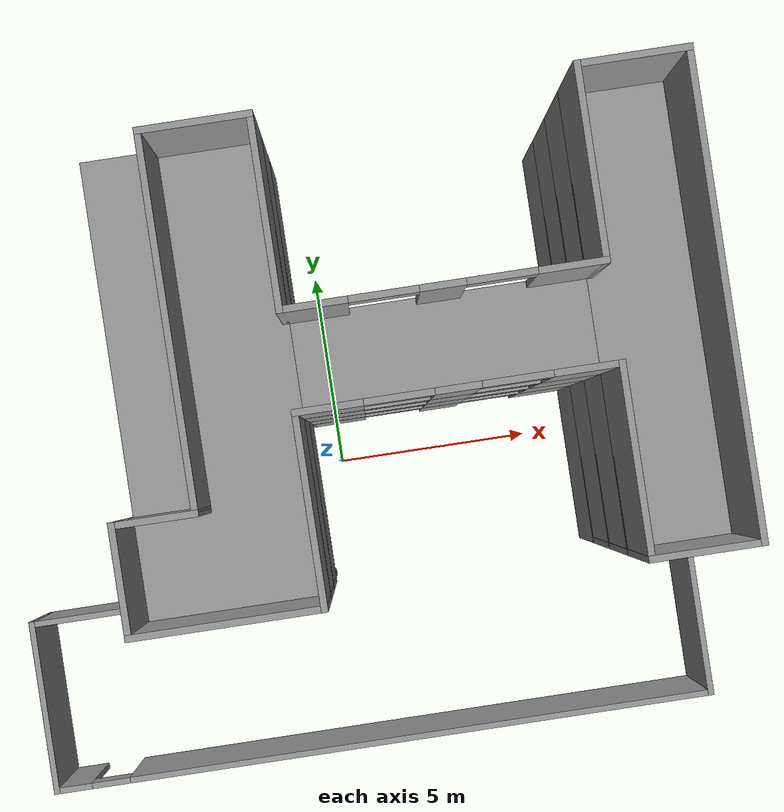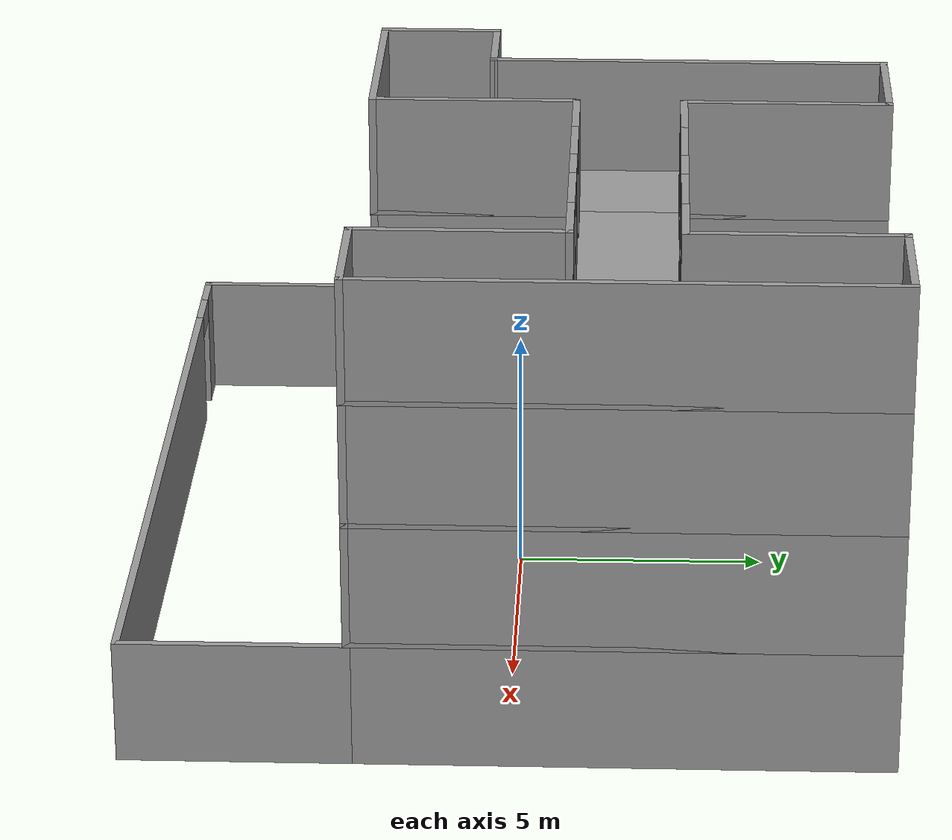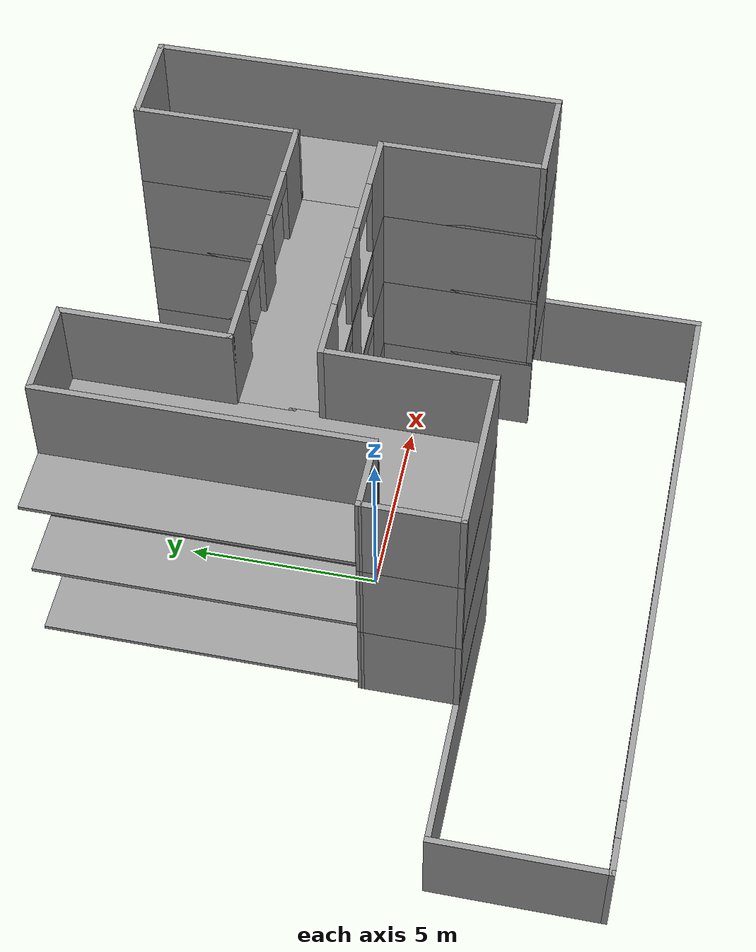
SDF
<sdf version="1.7">
 <model name="lobby_w_residential_levels_x3">
  <link name="Floor_0">
   <collision name="Floor_0_Collision_0">
    <geometry><box><size>2.5 10.5 0.1</size></box></geometry>
    <pose>7.375 2.175 0.05 0 -0 0</pose>
   </collision>
   <visual name="Floor_0_Visual_0">
    <pose>7.375 2.175 0.05 0 -0 0</pose>
    <geometry><box><size>2.5 10.5 0.1</size></box></geometry>
    <material>
     <script><uri>file://media/materials/scripts/gazebo.material</uri><name>Gazebo/Grey</name></script>
     <ambient>1 1 1 1</ambient>
    </material>
    <meta><layer>1</layer></meta>
   </visual>
   <collision name="Floor_0_Collision_1">
    <geometry><box><size>4.1 10.5 0.1</size></box></geometry>
    <pose>-2.625 2.175 0.05 0 -0 0</pose>
   </collision>
   <visual name="Floor_0_Visual_1">
    <pose>-2.625 2.175 0.05 0 -0 0</pose>
    <geometry><box><size>4.1 10.5 0.1</size></box></geometry>
    <material>
     <script><uri>file://media/materials/scripts/gazebo.material</uri><name>Gazebo/Grey</name></script>
     <ambient>1 1 1 1</ambient>
    </material>
    <meta><layer>1</layer></meta>
   </visual>
   <collision name="Floor_0_Collision_2">
    <geometry><box><size>6.85 2.3 0.1</size></box></geometry>
    <pose>2.775 2.175 0.05 0 -0 0</pose>
   </collision>
   <visual name="Floor_0_Visual_2">
    <pose>2.775 2.175 0.05 0 -0 0</pose>
    <geometry><box><size>6.85 2.3 0.1</size></box></geometry>
    <material>
     <script><uri>file://media/materials/scripts/gazebo.material</uri><name>Gazebo/Grey</name></script>
     <ambient>1 1 1 1</ambient>
    </material>
    <meta><layer>1</layer></meta>
   </visual>
   <pose>0 0 2.5 0 -0 0</pose>
  </link>
  <link name="Floor_1">
   <collision name="Floor_1_Collision_0">
    <geometry><box><size>2.5 10.5 0.1</size></box></geometry>
    <pose>7.375 2.175 0.05 0 -0 0</pose>
   </collision>
   <visual name="Floor_1_Visual_0">
    <pose>7.375 2.175 0.05 0 -0 0</pose>
    <geometry><box><size>2.5 10.5 0.1</size></box></geometry>
    <material>
     <script><uri>file://media/materials/scripts/gazebo.material</uri><name>Gazebo/Grey</name></script>
     <ambient>1 1 1 1</ambient>
    </material>
    <meta><layer>1</layer></meta>
   </visual>
   <collision name="Floor_1_Collision_1">
    <geometry><box><size>4.1 10.5 0.1</size></box></geometry>
    <pose>-2.625 2.175 0.05 0 -0 0</pose>
   </collision>
   <visual name="Floor_1_Visual_1">
    <pose>-2.625 2.175 0.05 0 -0 0</pose>
    <geometry><box><size>4.1 10.5 0.1</size></box></geometry>
    <material>
     <script><uri>file://media/materials/scripts/gazebo.material</uri><name>Gazebo/Grey</name></script>
     <ambient>1 1 1 1</ambient>
    </material>
    <meta><layer>1</layer></meta>
   </visual>
   <collision name="Floor_1_Collision_2">
    <geometry><box><size>6.85 2.3 0.1</size></box></geometry>
    <pose>2.775 2.175 0.05 0 -0 0</pose>
   </collision>
   <visual name="Floor_1_Visual_2">
    <pose>2.775 2.175 0.05 0 -0 0</pose>
    <geometry><box><size>6.85 2.3 0.1</size></box></geometry>
    <material>
     <script><uri>file://media/materials/scripts/gazebo.material</uri><name>Gazebo/Grey</name></script>
     <ambient>1 1 1 1</ambient>
    </material>
    <meta><layer>1</layer></meta>
   </visual>
   <pose>0 0 7.5 0 -0 0</pose>
  </link>
  <link name="Floor_2">
   <collision name="Floor_2_Collision_0">
    <geometry><box><size>2.5 10.5 0.1</size></box></geometry>
    <pose>7.375 2.175 0.05 0 -0 0</pose>
   </collision>
   <visual name="Floor_2_Visual_0">
    <pose>7.375 2.175 0.05 0 -0 0</pose>
    <geometry><box><size>2.5 10.5 0.1</size></box></geometry>
    <material>
     <script><uri>file://media/materials/scripts/gazebo.material</uri><name>Gazebo/Grey</name></script>
     <ambient>1 1 1 1</ambient>
    </material>
    <meta><layer>1</layer></meta>
   </visual>
   <collision name="Floor_2_Collision_1">
    <geometry><box><size>4.1 10.5 0.1</size></box></geometry>
    <pose>-2.625 2.175 0.05 0 -0 0</pose>
   </collision>
   <visual name="Floor_2_Visual_1">
    <pose>-2.625 2.175 0.05 0 -0 0</pose>
    <geometry><box><size>4.1 10.5 0.1</size></box></geometry>
    <material>
     <script><uri>file://media/materials/scripts/gazebo.material</uri><name>Gazebo/Grey</name></script>
     <ambient>1 1 1 1</ambient>
    </material>
    <meta><layer>1</layer></meta>
   </visual>
   <collision name="Floor_2_Collision_2">
    <geometry><box><size>6.85 2.3 0.1</size></box></geometry>
    <pose>2.775 2.175 0.05 0 -0 0</pose>
   </collision>
   <visual name="Floor_2_Visual_2">
    <pose>2.775 2.175 0.05 0 -0 0</pose>
    <geometry><box><size>6.85 2.3 0.1</size></box></geometry>
    <material>
     <script><uri>file://media/materials/scripts/gazebo.material</uri><name>Gazebo/Grey</name></script>
     <ambient>1 1 1 1</ambient>
    </material>
    <meta><layer>1</layer></meta>
   </visual>
   <pose>0 0 5.0 0 -0 0</pose>
  </link>
  <link name="Wall_100">
   <collision name="Wall_100_Collision">
    <geometry><box><size>4.5 0.15 2.5</size></box></geometry>
    <pose>0 0 1.25 0 -0 0</pose>
   </collision>
   <visual name="Wall_100_Visual">
    <pose>0 0 1.25 0 -0 0</pose>
    <geometry><box><size>4.5 0.15 2.5</size></box></geometry>
    <material>
     <script><uri>file://media/materials/scripts/gazebo.material</uri><name>Gazebo/Grey</name></script>
     <ambient>1 1 1 1</ambient>
    </material>
    <meta><layer>0</layer></meta>
   </visual>
   <pose>-8.55 -5.175 0 0 -0 1.5708</pose>
  </link>
  <link name="Wall_101">
   <collision name="Wall_101_Collision">
    <geometry><box><size>8 0.15 2.5</size></box></geometry>
    <pose>0 0 1.25 0 -0 0</pose>
   </collision>
   <visual name="Wall_101_Visual">
    <pose>0 0 1.25 0 -0 0</pose>
    <geometry><box><size>8 0.15 2.5</size></box></geometry>
    <material>
     <script><uri>file://media/materials/scripts/gazebo.material</uri><name>Gazebo/Grey</name></script>
     <ambient>1 1 1 1</ambient>
    </material>
    <meta><layer>0</layer></meta>
   </visual>
   <pose>-4.625 -3 0 0 -0 0</pose>
  </link>
  <link name="Wall_38">
   <pose>2.775 3.25 0 0 -0 0</pose>
   <visual name="Wall_38_Visual_0">
    <pose>-2.74441 0 1.25 0 -0 0</pose>
    <geometry><box><size>1.51117 0.15 2.5</size></box></geometry>
    <material>
     <script><uri>file://media/materials/scripts/gazebo.material</uri><name>Gazebo/Grey</name></script>
     <ambient>1 1 1 1</ambient>
    </material>
    <meta><layer>0</layer></meta>
   </visual>
   <collision name="Wall_38_Collision_0">
    <geometry><box><size>1.51117 0.15 2.5</size></box></geometry>
    <pose>-2.74441 0 1.25 0 -0 0</pose>
   </collision>
   <visual name="Wall_38_Visual_1">
    <pose>0.004325 0 1.25 0 -0 0</pose>
    <geometry><box><size>0.9863 0.15 2.5</size></box></geometry>
    <material>
     <script><uri>file://media/materials/scripts/gazebo.material</uri><name>Gazebo/Grey</name></script>
     <ambient>1 1 1 1</ambient>
    </material>
    <meta><layer>0</layer></meta>
   </visual>
   <collision name="Wall_38_Collision_1">
    <geometry><box><size>0.9863 0.15 2.5</size></box></geometry>
    <pose>0.004325 0 1.25 0 -0 0</pose>
   </collision>
   <visual name="Wall_38_Visual_2">
    <pose>2.74874 0 1.25 0 -0 0</pose>
    <geometry><box><size>1.50253 0.15 2.5</size></box></geometry>
    <material>
     <script><uri>file://media/materials/scripts/gazebo.material</uri><name>Gazebo/Grey</name></script>
     <ambient>1 1 1 1</ambient>
    </material>
    <meta><layer>0</layer></meta>
   </visual>
   <collision name="Wall_38_Collision_2">
    <geometry><box><size>1.50253 0.15 2.5</size></box></geometry>
    <pose>2.74874 0 1.25 0 -0 0</pose>
   </collision>
   <visual name="Wall_38_Visual_3">
    <pose>-1.23883 0 2.25 0 -0 0</pose>
    <geometry><box><size>1.5 0.15 0.5</size></box></geometry>
    <material>
     <script><uri>file://media/materials/scripts/gazebo.material</uri><name>Gazebo/Grey</name></script>
     <ambient>1 1 1 1</ambient>
    </material>
    <meta><layer>0</layer></meta>
   </visual>
   <collision name="Wall_38_Collision_3">
    <geometry><box><size>1.5 0.15 0.5</size></box></geometry>
    <pose>-1.23883 0 2.25 0 -0 0</pose>
   </collision>
   <visual name="Wall_38_Visual_4">
    <pose>1.24747 0 2.25 0 -0 0</pose>
    <geometry><box><size>1.5 0.15 0.5</size></box></geometry>
    <material>
     <script><uri>file://media/materials/scripts/gazebo.material</uri><name>Gazebo/Grey</name></script>
     <ambient>1 1 1 1</ambient>
    </material>
    <meta><layer>0</layer></meta>
   </visual>
   <collision name="Wall_38_Collision_4">
    <geometry><box><size>1.5 0.15 0.5</size></box></geometry>
    <pose>1.24747 0 2.25 0 -0 0</pose>
   </collision>
  </link>
  <link name="Wall_39">
   <collision name="Wall_39_Collision">
    <geometry><box><size>4.25 0.15 2.5</size></box></geometry>
    <pose>0 0 1.25 0 -0 0</pose>
   </collision>
   <visual name="Wall_39_Visual">
    <pose>0 0 1.25 0 -0 0</pose>
    <geometry><box><size>4.25 0.15 2.5</size></box></geometry>
    <material>
     <script><uri>file://media/materials/scripts/gazebo.material</uri><name>Gazebo/Grey</name></script>
     <ambient>1 1 1 1</ambient>
    </material>
    <meta><layer>0</layer></meta>
   </visual>
   <pose>6.2 5.3 0 0 -0 1.5708</pose>
  </link>
  <link name="Wall_40">
   <collision name="Wall_40_Collision">
    <geometry><box><size>2.5 0.15 2.5</size></box></geometry>
    <pose>0 0 1.25 0 -0 0</pose>
   </collision>
   <visual name="Wall_40_Visual">
    <pose>0 0 1.25 0 -0 0</pose>
    <geometry><box><size>2.5 0.15 2.5</size></box></geometry>
    <material>
     <script><uri>file://media/materials/scripts/gazebo.material</uri><name>Gazebo/Grey</name></script>
     <ambient>1 1 1 1</ambient>
    </material>
    <meta><layer>0</layer></meta>
   </visual>
   <pose>7.375 7.35 0 0 -0 0</pose>
  </link>
  <link name="Wall_41">
   <collision name="Wall_41_Collision">
    <geometry><box><size>10.5 0.15 2.5</size></box></geometry>
    <pose>0 0 1.25 0 -0 0</pose>
   </collision>
   <visual name="Wall_41_Visual">
    <pose>0 0 1.25 0 -0 0</pose>
    <geometry><box><size>10.5 0.15 2.5</size></box></geometry>
    <material>
     <script><uri>file://media/materials/scripts/gazebo.material</uri><name>Gazebo/Grey</name></script>
     <ambient>1 1 1 1</ambient>
    </material>
    <meta><layer>0</layer></meta>
   </visual>
   <pose>8.55 2.175 0 0 -0 -1.5708</pose>
  </link>
  <link name="Wall_43">
   <collision name="Wall_43_Collision">
    <geometry><box><size>4.25 0.15 2.5</size></box></geometry>
    <pose>0 0 1.25 0 -0 0</pose>
   </collision>
   <visual name="Wall_43_Visual">
    <pose>0 0 1.25 0 -0 0</pose>
    <geometry><box><size>4.25 0.15 2.5</size></box></geometry>
    <material>
     <script><uri>file://media/materials/scripts/gazebo.material</uri><name>Gazebo/Grey</name></script>
     <ambient>1 1 1 1</ambient>
    </material>
    <meta><layer>0</layer></meta>
   </visual>
   <pose>6.2 -0.95 0 0 -0 1.5708</pose>
  </link>
  <link name="Wall_44">
   <pose>2.775 1.1 0 0 -0 3.14159</pose>
   <visual name="Wall_44_Visual_0">
    <pose>-2.74874 0 1.25 0 -0 0</pose>
    <geometry><box><size>1.50253 0.15 2.5</size></box></geometry>
    <material>
     <script><uri>file://media/materials/scripts/gazebo.material</uri><name>Gazebo/Grey</name></script>
     <ambient>1 1 1 1</ambient>
    </material>
    <meta><layer>0</layer></meta>
   </visual>
   <collision name="Wall_44_Collision_0">
    <geometry><box><size>1.50253 0.15 2.5</size></box></geometry>
    <pose>-2.74874 0 1.25 0 -0 0</pose>
   </collision>
   <visual name="Wall_44_Visual_1">
    <pose>-0.004325 0 1.25 0 -0 0</pose>
    <geometry><box><size>0.9863 0.15 2.5</size></box></geometry>
    <material>
     <script><uri>file://media/materials/scripts/gazebo.material</uri><name>Gazebo/Grey</name></script>
     <ambient>1 1 1 1</ambient>
    </material>
    <meta><layer>0</layer></meta>
   </visual>
   <collision name="Wall_44_Collision_1">
    <geometry><box><size>0.9863 0.15 2.5</size></box></geometry>
    <pose>-0.004325 0 1.25 0 -0 0</pose>
   </collision>
   <visual name="Wall_44_Visual_2">
    <pose>2.74441 0 1.25 0 -0 0</pose>
    <geometry><box><size>1.51117 0.15 2.5</size></box></geometry>
    <material>
     <script><uri>file://media/materials/scripts/gazebo.material</uri><name>Gazebo/Grey</name></script>
     <ambient>1 1 1 1</ambient>
    </material>
    <meta><layer>0</layer></meta>
   </visual>
   <collision name="Wall_44_Collision_2">
    <geometry><box><size>1.51117 0.15 2.5</size></box></geometry>
    <pose>2.74441 0 1.25 0 -0 0</pose>
   </collision>
   <visual name="Wall_44_Visual_3">
    <pose>-1.24747 0 2.25 0 -0 0</pose>
    <geometry><box><size>1.5 0.15 0.5</size></box></geometry>
    <material>
     <script><uri>file://media/materials/scripts/gazebo.material</uri><name>Gazebo/Grey</name></script>
     <ambient>1 1 1 1</ambient>
    </material>
    <meta><layer>0</layer></meta>
   </visual>
   <collision name="Wall_44_Collision_3">
    <geometry><box><size>1.5 0.15 0.5</size></box></geometry>
    <pose>-1.24747 0 2.25 0 -0 0</pose>
   </collision>
   <visual name="Wall_44_Visual_4">
    <pose>1.23883 0 2.25 0 -0 0</pose>
    <geometry><box><size>1.5 0.15 0.5</size></box></geometry>
    <material>
     <script><uri>file://media/materials/scripts/gazebo.material</uri><name>Gazebo/Grey</name></script>
     <ambient>1 1 1 1</ambient>
    </material>
    <meta><layer>0</layer></meta>
   </visual>
   <collision name="Wall_44_Collision_4">
    <geometry><box><size>1.5 0.15 0.5</size></box></geometry>
    <pose>1.23883 0 2.25 0 -0 0</pose>
   </collision>
  </link>
  <link name="Wall_54">
   <collision name="Wall_54_Collision">
    <geometry><box><size>2.5 0.15 2.5</size></box></geometry>
    <pose>0 0 1.25 0 -0 0</pose>
   </collision>
   <visual name="Wall_54_Visual">
    <pose>0 0 1.25 0 -0 0</pose>
    <geometry><box><size>2.5 0.15 2.5</size></box></geometry>
    <material>
     <script><uri>file://media/materials/scripts/gazebo.material</uri><name>Gazebo/Grey</name></script>
     <ambient>1 1 1 1</ambient>
    </material>
    <meta><layer>1</layer></meta>
   </visual>
   <pose>-1.825 7.35 2.5 0 -0 0</pose>
  </link>
  <link name="Wall_55">
   <collision name="Wall_55_Collision">
    <geometry><box><size>4.25 0.15 2.5</size></box></geometry>
    <pose>0 0 1.25 0 -0 0</pose>
   </collision>
   <visual name="Wall_55_Visual">
    <pose>0 0 1.25 0 -0 0</pose>
    <geometry><box><size>4.25 0.15 2.5</size></box></geometry>
    <material>
     <script><uri>file://media/materials/scripts/gazebo.material</uri><name>Gazebo/Grey</name></script>
     <ambient>1 1 1 1</ambient>
    </material>
    <meta><layer>1</layer></meta>
   </visual>
   <pose>-0.65 5.3 2.5 0 -0 -1.5708</pose>
  </link>
  <link name="Wall_56">
   <pose>2.775 3.25 2.5 0 -0 0</pose>
   <visual name="Wall_56_Visual_0">
    <pose>-2.74441 0 1.25 0 -0 0</pose>
    <geometry><box><size>1.51117 0.15 2.5</size></box></geometry>
    <material>
     <script><uri>file://media/materials/scripts/gazebo.material</uri><name>Gazebo/Grey</name></script>
     <ambient>1 1 1 1</ambient>
    </material>
    <meta><layer>1</layer></meta>
   </visual>
   <collision name="Wall_56_Collision_0">
    <geometry><box><size>1.51117 0.15 2.5</size></box></geometry>
    <pose>-2.74441 0 1.25 0 -0 0</pose>
   </collision>
   <visual name="Wall_56_Visual_1">
    <pose>0.004325 0 1.25 0 -0 0</pose>
    <geometry><box><size>0.9863 0.15 2.5</size></box></geometry>
    <material>
     <script><uri>file://media/materials/scripts/gazebo.material</uri><name>Gazebo/Grey</name></script>
     <ambient>1 1 1 1</ambient>
    </material>
    <meta><layer>1</layer></meta>
   </visual>
   <collision name="Wall_56_Collision_1">
    <geometry><box><size>0.9863 0.15 2.5</size></box></geometry>
    <pose>0.004325 0 1.25 0 -0 0</pose>
   </collision>
   <visual name="Wall_56_Visual_2">
    <pose>2.74874 0 1.25 0 -0 0</pose>
    <geometry><box><size>1.50253 0.15 2.5</size></box></geometry>
    <material>
     <script><uri>file://media/materials/scripts/gazebo.material</uri><name>Gazebo/Grey</name></script>
     <ambient>1 1 1 1</ambient>
    </material>
    <meta><layer>1</layer></meta>
   </visual>
   <collision name="Wall_56_Collision_2">
    <geometry><box><size>1.50253 0.15 2.5</size></box></geometry>
    <pose>2.74874 0 1.25 0 -0 0</pose>
   </collision>
   <visual name="Wall_56_Visual_3">
    <pose>-1.23883 0 2.25 0 -0 0</pose>
    <geometry><box><size>1.5 0.15 0.5</size></box></geometry>
    <material>
     <script><uri>file://media/materials/scripts/gazebo.material</uri><name>Gazebo/Grey</name></script>
     <ambient>1 1 1 1</ambient>
    </material>
    <meta><layer>1</layer></meta>
   </visual>
   <collision name="Wall_56_Collision_3">
    <geometry><box><size>1.5 0.15 0.5</size></box></geometry>
    <pose>-1.23883 0 2.25 0 -0 0</pose>
   </collision>
   <visual name="Wall_56_Visual_4">
    <pose>1.24747 0 2.25 0 -0 0</pose>
    <geometry><box><size>1.5 0.15 0.5</size></box></geometry>
    <material>
     <script><uri>file://media/materials/scripts/gazebo.material</uri><name>Gazebo/Grey</name></script>
     <ambient>1 1 1 1</ambient>
    </material>
    <meta><layer>1</layer></meta>
   </visual>
   <collision name="Wall_56_Collision_4">
    <geometry><box><size>1.5 0.15 0.5</size></box></geometry>
    <pose>1.24747 0 2.25 0 -0 0</pose>
   </collision>
  </link>
  <link name="Wall_57">
   <collision name="Wall_57_Collision">
    <geometry><box><size>4.25 0.15 2.5</size></box></geometry>
    <pose>0 0 1.25 0 -0 0</pose>
   </collision>
   <visual name="Wall_57_Visual">
    <pose>0 0 1.25 0 -0 0</pose>
    <geometry><box><size>4.25 0.15 2.5</size></box></geometry>
    <material>
     <script><uri>file://media/materials/scripts/gazebo.material</uri><name>Gazebo/Grey</name></script>
     <ambient>1 1 1 1</ambient>
    </material>
    <meta><layer>1</layer></meta>
   </visual>
   <pose>6.2 5.3 2.5 0 -0 1.5708</pose>
  </link>
  <link name="Wall_58">
   <collision name="Wall_58_Collision">
    <geometry><box><size>2.5 0.15 2.5</size></box></geometry>
    <pose>0 0 1.25 0 -0 0</pose>
   </collision>
   <visual name="Wall_58_Visual">
    <pose>0 0 1.25 0 -0 0</pose>
    <geometry><box><size>2.5 0.15 2.5</size></box></geometry>
    <material>
     <script><uri>file://media/materials/scripts/gazebo.material</uri><name>Gazebo/Grey</name></script>
     <ambient>1 1 1 1</ambient>
    </material>
    <meta><layer>1</layer></meta>
   </visual>
   <pose>7.375 7.35 2.5 0 -0 0</pose>
  </link>
  <link name="Wall_59">
   <collision name="Wall_59_Collision">
    <geometry><box><size>10.5 0.15 2.5</size></box></geometry>
    <pose>0 0 1.25 0 -0 0</pose>
   </collision>
   <visual name="Wall_59_Visual">
    <pose>0 0 1.25 0 -0 0</pose>
    <geometry><box><size>10.5 0.15 2.5</size></box></geometry>
    <material>
     <script><uri>file://media/materials/scripts/gazebo.material</uri><name>Gazebo/Grey</name></script>
     <ambient>1 1 1 1</ambient>
    </material>
    <meta><layer>1</layer></meta>
   </visual>
   <pose>8.55 2.175 2.5 0 -0 -1.5708</pose>
  </link>
  <link name="Wall_60">
   <collision name="Wall_60_Collision">
    <geometry><box><size>2.5 0.15 2.5</size></box></geometry>
    <pose>0 0 1.25 0 -0 0</pose>
   </collision>
   <visual name="Wall_60_Visual">
    <pose>0 0 1.25 0 -0 0</pose>
    <geometry><box><size>2.5 0.15 2.5</size></box></geometry>
    <material>
     <script><uri>file://media/materials/scripts/gazebo.material</uri><name>Gazebo/Grey</name></script>
     <ambient>1 1 1 1</ambient>
    </material>
    <meta><layer>1</layer></meta>
   </visual>
   <pose>7.375 -3 2.5 0 -0 3.14159</pose>
  </link>
  <link name="Wall_61">
   <collision name="Wall_61_Collision">
    <geometry><box><size>4.25 0.15 2.5</size></box></geometry>
    <pose>0 0 1.25 0 -0 0</pose>
   </collision>
   <visual name="Wall_61_Visual">
    <pose>0 0 1.25 0 -0 0</pose>
    <geometry><box><size>4.25 0.15 2.5</size></box></geometry>
    <material>
     <script><uri>file://media/materials/scripts/gazebo.material</uri><name>Gazebo/Grey</name></script>
     <ambient>1 1 1 1</ambient>
    </material>
    <meta><layer>1</layer></meta>
   </visual>
   <pose>6.2 -0.95 2.5 0 -0 1.5708</pose>
  </link>
  <link name="Wall_62">
   <pose>2.775 1.1 2.5 0 -0 3.14159</pose>
   <visual name="Wall_62_Visual_0">
    <pose>-2.74874 0 1.25 0 -0 0</pose>
    <geometry><box><size>1.50253 0.15 2.5</size></box></geometry>
    <material>
     <script><uri>file://media/materials/scripts/gazebo.material</uri><name>Gazebo/Grey</name></script>
     <ambient>1 1 1 1</ambient>
    </material>
    <meta><layer>1</layer></meta>
   </visual>
   <collision name="Wall_62_Collision_0">
    <geometry><box><size>1.50253 0.15 2.5</size></box></geometry>
    <pose>-2.74874 0 1.25 0 -0 0</pose>
   </collision>
   <visual name="Wall_62_Visual_1">
    <pose>-0.004325 0 1.25 0 -0 0</pose>
    <geometry><box><size>0.9863 0.15 2.5</size></box></geometry>
    <material>
     <script><uri>file://media/materials/scripts/gazebo.material</uri><name>Gazebo/Grey</name></script>
     <ambient>1 1 1 1</ambient>
    </material>
    <meta><layer>1</layer></meta>
   </visual>
   <collision name="Wall_62_Collision_1">
    <geometry><box><size>0.9863 0.15 2.5</size></box></geometry>
    <pose>-0.004325 0 1.25 0 -0 0</pose>
   </collision>
   <visual name="Wall_62_Visual_2">
    <pose>2.74441 0 1.25 0 -0 0</pose>
    <geometry><box><size>1.51117 0.15 2.5</size></box></geometry>
    <material>
     <script><uri>file://media/materials/scripts/gazebo.material</uri><name>Gazebo/Grey</name></script>
     <ambient>1 1 1 1</ambient>
    </material>
    <meta><layer>1</layer></meta>
   </visual>
   <collision name="Wall_62_Collision_2">
    <geometry><box><size>1.51117 0.15 2.5</size></box></geometry>
    <pose>2.74441 0 1.25 0 -0 0</pose>
   </collision>
   <visual name="Wall_62_Visual_3">
    <pose>-1.24747 0 2.25 0 -0 0</pose>
    <geometry><box><size>1.5 0.15 0.5</size></box></geometry>
    <material>
     <script><uri>file://media/materials/scripts/gazebo.material</uri><name>Gazebo/Grey</name></script>
     <ambient>1 1 1 1</ambient>
    </material>
    <meta><layer>1</layer></meta>
   </visual>
   <collision name="Wall_62_Collision_3">
    <geometry><box><size>1.5 0.15 0.5</size></box></geometry>
    <pose>-1.24747 0 2.25 0 -0 0</pose>
   </collision>
   <visual name="Wall_62_Visual_4">
    <pose>1.23883 0 2.25 0 -0 0</pose>
    <geometry><box><size>1.5 0.15 0.5</size></box></geometry>
    <material>
     <script><uri>file://media/materials/scripts/gazebo.material</uri><name>Gazebo/Grey</name></script>
     <ambient>1 1 1 1</ambient>
    </material>
    <meta><layer>1</layer></meta>
   </visual>
   <collision name="Wall_62_Collision_4">
    <geometry><box><size>1.5 0.15 0.5</size></box></geometry>
    <pose>1.23883 0 2.25 0 -0 0</pose>
   </collision>
  </link>
  <link name="Wall_63">
   <collision name="Wall_63_Collision">
    <geometry><box><size>4.25 0.15 2.5</size></box></geometry>
    <pose>0 0 1.25 0 -0 0</pose>
   </collision>
   <visual name="Wall_63_Visual">
    <pose>0 0 1.25 0 -0 0</pose>
    <geometry><box><size>4.25 0.15 2.5</size></box></geometry>
    <material>
     <script><uri>file://media/materials/scripts/gazebo.material</uri><name>Gazebo/Grey</name></script>
     <ambient>1 1 1 1</ambient>
    </material>
    <meta><layer>1</layer></meta>
   </visual>
   <pose>-0.65 -0.95 2.5 0 -0 -1.5708</pose>
  </link>
  <link name="Wall_64">
   <collision name="Wall_64_Collision">
    <geometry><box><size>4.25 0.15 2.5</size></box></geometry>
    <pose>0 0 1.25 0 -0 0</pose>
   </collision>
   <visual name="Wall_64_Visual">
    <pose>0 0 1.25 0 -0 0</pose>
    <geometry><box><size>4.25 0.15 2.5</size></box></geometry>
    <material>
     <script><uri>file://media/materials/scripts/gazebo.material</uri><name>Gazebo/Grey</name></script>
     <ambient>1 1 1 1</ambient>
    </material>
    <meta><layer>1</layer></meta>
   </visual>
   <pose>-2.7 -3 2.5 0 -0 3.14159</pose>
  </link>
  <link name="Wall_65">
   <collision name="Wall_65_Collision">
    <geometry><box><size>2.5 0.15 2.5</size></box></geometry>
    <pose>0 0 1.25 0 -0 0</pose>
   </collision>
   <visual name="Wall_65_Visual">
    <pose>0 0 1.25 0 -0 0</pose>
    <geometry><box><size>2.5 0.15 2.5</size></box></geometry>
    <material>
     <script><uri>file://media/materials/scripts/gazebo.material</uri><name>Gazebo/Grey</name></script>
     <ambient>1 1 1 1</ambient>
    </material>
    <meta><layer>1</layer></meta>
   </visual>
   <pose>-4.75 -1.825 2.5 0 -0 1.5708</pose>
  </link>
  <link name="Wall_66">
   <collision name="Wall_66_Collision">
    <geometry><box><size>1.9 0.15 2.5</size></box></geometry>
    <pose>0 0 1.25 0 -0 0</pose>
   </collision>
   <visual name="Wall_66_Visual">
    <pose>0 0 1.25 0 -0 0</pose>
    <geometry><box><size>1.9 0.15 2.5</size></box></geometry>
    <material>
     <script><uri>file://media/materials/scripts/gazebo.material</uri><name>Gazebo/Grey</name></script>
     <ambient>1 1 1 1</ambient>
    </material>
    <meta><layer>1</layer></meta>
   </visual>
   <pose>-3.875 -0.650563 2.5 0 -0 -0.000643</pose>
  </link>
  <link name="Wall_67">
   <collision name="Wall_67_Collision">
    <geometry><box><size>8.15113 0.15 2.5</size></box></geometry>
    <pose>0 0 1.25 0 -0 0</pose>
   </collision>
   <visual name="Wall_67_Visual">
    <pose>0 0 1.25 0 -0 0</pose>
    <geometry><box><size>8.15113 0.15 2.5</size></box></geometry>
    <material>
     <script><uri>file://media/materials/scripts/gazebo.material</uri><name>Gazebo/Grey</name></script>
     <ambient>1 1 1 1</ambient>
    </material>
    <meta><layer>1</layer></meta>
   </visual>
   <pose>-3 3.34944 2.5 0 -0 1.5708</pose>
  </link>
  <link name="Wall_68">
   <collision name="Wall_68_Collision">
    <geometry><box><size>2.5 0.15 2.5</size></box></geometry>
    <pose>0 0 1.25 0 -0 0</pose>
   </collision>
   <visual name="Wall_68_Visual">
    <pose>0 0 1.25 0 -0 0</pose>
    <geometry><box><size>2.5 0.15 2.5</size></box></geometry>
    <material>
     <script><uri>file://media/materials/scripts/gazebo.material</uri><name>Gazebo/Grey</name></script>
     <ambient>1 1 1 1</ambient>
    </material>
    <meta><layer>2</layer></meta>
   </visual>
   <pose>-1.825 7.35 5 0 -0 0</pose>
  </link>
  <link name="Wall_69">
   <collision name="Wall_69_Collision">
    <geometry><box><size>4.25 0.15 2.5</size></box></geometry>
    <pose>0 0 1.25 0 -0 0</pose>
   </collision>
   <visual name="Wall_69_Visual">
    <pose>0 0 1.25 0 -0 0</pose>
    <geometry><box><size>4.25 0.15 2.5</size></box></geometry>
    <material>
     <script><uri>file://media/materials/scripts/gazebo.material</uri><name>Gazebo/Grey</name></script>
     <ambient>1 1 1 1</ambient>
    </material>
    <meta><layer>2</layer></meta>
   </visual>
   <pose>-0.65 5.3 5 0 -0 -1.5708</pose>
  </link>
  <link name="Wall_70">
   <pose>2.775 3.25 5 0 -0 0</pose>
   <visual name="Wall_70_Visual_0">
    <pose>-2.74441 0 1.25 0 -0 0</pose>
    <geometry><box><size>1.51117 0.15 2.5</size></box></geometry>
    <material>
     <script><uri>file://media/materials/scripts/gazebo.material</uri><name>Gazebo/Grey</name></script>
     <ambient>1 1 1 1</ambient>
    </material>
    <meta><layer>2</layer></meta>
   </visual>
   <collision name="Wall_70_Collision_0">
    <geometry><box><size>1.51117 0.15 2.5</size></box></geometry>
    <pose>-2.74441 0 1.25 0 -0 0</pose>
   </collision>
   <visual name="Wall_70_Visual_1">
    <pose>0.004325 0 1.25 0 -0 0</pose>
    <geometry><box><size>0.9863 0.15 2.5</size></box></geometry>
    <material>
     <script><uri>file://media/materials/scripts/gazebo.material</uri><name>Gazebo/Grey</name></script>
     <ambient>1 1 1 1</ambient>
    </material>
    <meta><layer>2</layer></meta>
   </visual>
   <collision name="Wall_70_Collision_1">
    <geometry><box><size>0.9863 0.15 2.5</size></box></geometry>
    <pose>0.004325 0 1.25 0 -0 0</pose>
   </collision>
   <visual name="Wall_70_Visual_2">
    <pose>2.74874 0 1.25 0 -0 0</pose>
    <geometry><box><size>1.50253 0.15 2.5</size></box></geometry>
    <material>
     <script><uri>file://media/materials/scripts/gazebo.material</uri><name>Gazebo/Grey</name></script>
     <ambient>1 1 1 1</ambient>
    </material>
    <meta><layer>2</layer></meta>
   </visual>
   <collision name="Wall_70_Collision_2">
    <geometry><box><size>1.50253 0.15 2.5</size></box></geometry>
    <pose>2.74874 0 1.25 0 -0 0</pose>
   </collision>
   <visual name="Wall_70_Visual_3">
    <pose>-1.23883 0 2.25 0 -0 0</pose>
    <geometry><box><size>1.5 0.15 0.5</size></box></geometry>
    <material>
     <script><uri>file://media/materials/scripts/gazebo.material</uri><name>Gazebo/Grey</name></script>
     <ambient>1 1 1 1</ambient>
    </material>
    <meta><layer>2</layer></meta>
   </visual>
   <collision name="Wall_70_Collision_3">
    <geometry><box><size>1.5 0.15 0.5</size></box></geometry>
    <pose>-1.23883 0 2.25 0 -0 0</pose>
   </collision>
   <visual name="Wall_70_Visual_4">
    <pose>1.24747 0 2.25 0 -0 0</pose>
    <geometry><box><size>1.5 0.15 0.5</size></box></geometry>
    <material>
     <script><uri>file://media/materials/scripts/gazebo.material</uri><name>Gazebo/Grey</name></script>
     <ambient>1 1 1 1</ambient>
    </material>
    <meta><layer>2</layer></meta>
   </visual>
   <collision name="Wall_70_Collision_4">
    <geometry><box><size>1.5 0.15 0.5</size></box></geometry>
    <pose>1.24747 0 2.25 0 -0 0</pose>
   </collision>
  </link>
  <link name="Wall_71">
   <collision name="Wall_71_Collision">
    <geometry><box><size>4.25 0.15 2.5</size></box></geometry>
    <pose>0 0 1.25 0 -0 0</pose>
   </collision>
   <visual name="Wall_71_Visual">
    <pose>0 0 1.25 0 -0 0</pose>
    <geometry><box><size>4.25 0.15 2.5</size></box></geometry>
    <material>
     <script><uri>file://media/materials/scripts/gazebo.material</uri><name>Gazebo/Grey</name></script>
     <ambient>1 1 1 1</ambient>
    </material>
    <meta><layer>2</layer></meta>
   </visual>
   <pose>6.2 5.3 5 0 -0 1.5708</pose>
  </link>
  <link name="Wall_72">
   <collision name="Wall_72_Collision">
    <geometry><box><size>2.5 0.15 2.5</size></box></geometry>
    <pose>0 0 1.25 0 -0 0</pose>
   </collision>
   <visual name="Wall_72_Visual">
    <pose>0 0 1.25 0 -0 0</pose>
    <geometry><box><size>2.5 0.15 2.5</size></box></geometry>
    <material>
     <script><uri>file://media/materials/scripts/gazebo.material</uri><name>Gazebo/Grey</name></script>
     <ambient>1 1 1 1</ambient>
    </material>
    <meta><layer>2</layer></meta>
   </visual>
   <pose>7.375 7.35 5 0 -0 0</pose>
  </link>
  <link name="Wall_73">
   <collision name="Wall_73_Collision">
    <geometry><box><size>10.5 0.15 2.5</size></box></geometry>
    <pose>0 0 1.25 0 -0 0</pose>
   </collision>
   <visual name="Wall_73_Visual">
    <pose>0 0 1.25 0 -0 0</pose>
    <geometry><box><size>10.5 0.15 2.5</size></box></geometry>
    <material>
     <script><uri>file://media/materials/scripts/gazebo.material</uri><name>Gazebo/Grey</name></script>
     <ambient>1 1 1 1</ambient>
    </material>
    <meta><layer>2</layer></meta>
   </visual>
   <pose>8.55 2.175 5 0 -0 -1.5708</pose>
  </link>
  <link name="Wall_74">
   <collision name="Wall_74_Collision">
    <geometry><box><size>2.5 0.15 2.5</size></box></geometry>
    <pose>0 0 1.25 0 -0 0</pose>
   </collision>
   <visual name="Wall_74_Visual">
    <pose>0 0 1.25 0 -0 0</pose>
    <geometry><box><size>2.5 0.15 2.5</size></box></geometry>
    <material>
     <script><uri>file://media/materials/scripts/gazebo.material</uri><name>Gazebo/Grey</name></script>
     <ambient>1 1 1 1</ambient>
    </material>
    <meta><layer>2</layer></meta>
   </visual>
   <pose>7.375 -3 5 0 -0 3.14159</pose>
  </link>
  <link name="Wall_75">
   <collision name="Wall_75_Collision">
    <geometry><box><size>4.25 0.15 2.5</size></box></geometry>
    <pose>0 0 1.25 0 -0 0</pose>
   </collision>
   <visual name="Wall_75_Visual">
    <pose>0 0 1.25 0 -0 0</pose>
    <geometry><box><size>4.25 0.15 2.5</size></box></geometry>
    <material>
     <script><uri>file://media/materials/scripts/gazebo.material</uri><name>Gazebo/Grey</name></script>
     <ambient>1 1 1 1</ambient>
    </material>
    <meta><layer>2</layer></meta>
   </visual>
   <pose>6.2 -0.95 5 0 -0 1.5708</pose>
  </link>
  <link name="Wall_76">
   <pose>2.775 1.1 5 0 -0 3.14159</pose>
   <visual name="Wall_76_Visual_0">
    <pose>-2.74874 0 1.25 0 -0 0</pose>
    <geometry><box><size>1.50253 0.15 2.5</size></box></geometry>
    <material>
     <script><uri>file://media/materials/scripts/gazebo.material</uri><name>Gazebo/Grey</name></script>
     <ambient>1 1 1 1</ambient>
    </material>
    <meta><layer>2</layer></meta>
   </visual>
   <collision name="Wall_76_Collision_0">
    <geometry><box><size>1.50253 0.15 2.5</size></box></geometry>
    <pose>-2.74874 0 1.25 0 -0 0</pose>
   </collision>
   <visual name="Wall_76_Visual_1">
    <pose>-0.004325 0 1.25 0 -0 0</pose>
    <geometry><box><size>0.9863 0.15 2.5</size></box></geometry>
    <material>
     <script><uri>file://media/materials/scripts/gazebo.material</uri><name>Gazebo/Grey</name></script>
     <ambient>1 1 1 1</ambient>
    </material>
    <meta><layer>2</layer></meta>
   </visual>
   <collision name="Wall_76_Collision_1">
    <geometry><box><size>0.9863 0.15 2.5</size></box></geometry>
    <pose>-0.004325 0 1.25 0 -0 0</pose>
   </collision>
   <visual name="Wall_76_Visual_2">
    <pose>2.74441 0 1.25 0 -0 0</pose>
    <geometry><box><size>1.51117 0.15 2.5</size></box></geometry>
    <material>
     <script><uri>file://media/materials/scripts/gazebo.material</uri><name>Gazebo/Grey</name></script>
     <ambient>1 1 1 1</ambient>
    </material>
    <meta><layer>2</layer></meta>
   </visual>
   <collision name="Wall_76_Collision_2">
    <geometry><box><size>1.51117 0.15 2.5</size></box></geometry>
    <pose>2.74441 0 1.25 0 -0 0</pose>
   </collision>
   <visual name="Wall_76_Visual_3">
    <pose>-1.24747 0 2.25 0 -0 0</pose>
    <geometry><box><size>1.5 0.15 0.5</size></box></geometry>
    <material>
     <script><uri>file://media/materials/scripts/gazebo.material</uri><name>Gazebo/Grey</name></script>
     <ambient>1 1 1 1</ambient>
    </material>
    <meta><layer>2</layer></meta>
   </visual>
   <collision name="Wall_76_Collision_3">
    <geometry><box><size>1.5 0.15 0.5</size></box></geometry>
    <pose>-1.24747 0 2.25 0 -0 0</pose>
   </collision>
   <visual name="Wall_76_Visual_4">
    <pose>1.23883 0 2.25 0 -0 0</pose>
    <geometry><box><size>1.5 0.15 0.5</size></box></geometry>
    <material>
     <script><uri>file://media/materials/scripts/gazebo.material</uri><name>Gazebo/Grey</name></script>
     <ambient>1 1 1 1</ambient>
    </material>
    <meta><layer>2</layer></meta>
   </visual>
   <collision name="Wall_76_Collision_4">
    <geometry><box><size>1.5 0.15 0.5</size></box></geometry>
    <pose>1.23883 0 2.25 0 -0 0</pose>
   </collision>
  </link>
  <link name="Wall_77">
   <collision name="Wall_77_Collision">
    <geometry><box><size>4.25 0.15 2.5</size></box></geometry>
    <pose>0 0 1.25 0 -0 0</pose>
   </collision>
   <visual name="Wall_77_Visual">
    <pose>0 0 1.25 0 -0 0</pose>
    <geometry><box><size>4.25 0.15 2.5</size></box></geometry>
    <material>
     <script><uri>file://media/materials/scripts/gazebo.material</uri><name>Gazebo/Grey</name></script>
     <ambient>1 1 1 1</ambient>
    </material>
    <meta><layer>2</layer></meta>
   </visual>
   <pose>-0.65 -0.95 5 0 -0 -1.5708</pose>
  </link>
  <link name="Wall_78">
   <collision name="Wall_78_Collision">
    <geometry><box><size>4.25 0.15 2.5</size></box></geometry>
    <pose>0 0 1.25 0 -0 0</pose>
   </collision>
   <visual name="Wall_78_Visual">
    <pose>0 0 1.25 0 -0 0</pose>
    <geometry><box><size>4.25 0.15 2.5</size></box></geometry>
    <material>
     <script><uri>file://media/materials/scripts/gazebo.material</uri><name>Gazebo/Grey</name></script>
     <ambient>1 1 1 1</ambient>
    </material>
    <meta><layer>2</layer></meta>
   </visual>
   <pose>-2.7 -3 5 0 -0 3.14159</pose>
  </link>
  <link name="Wall_79">
   <collision name="Wall_79_Collision">
    <geometry><box><size>2.5 0.15 2.5</size></box></geometry>
    <pose>0 0 1.25 0 -0 0</pose>
   </collision>
   <visual name="Wall_79_Visual">
    <pose>0 0 1.25 0 -0 0</pose>
    <geometry><box><size>2.5 0.15 2.5</size></box></geometry>
    <material>
     <script><uri>file://media/materials/scripts/gazebo.material</uri><name>Gazebo/Grey</name></script>
     <ambient>1 1 1 1</ambient>
    </material>
    <meta><layer>2</layer></meta>
   </visual>
   <pose>-4.75 -1.825 5 0 -0 1.5708</pose>
  </link>
  <link name="Wall_80">
   <collision name="Wall_80_Collision">
    <geometry><box><size>1.9 0.15 2.5</size></box></geometry>
    <pose>0 0 1.25 0 -0 0</pose>
   </collision>
   <visual name="Wall_80_Visual">
    <pose>0 0 1.25 0 -0 0</pose>
    <geometry><box><size>1.9 0.15 2.5</size></box></geometry>
    <material>
     <script><uri>file://media/materials/scripts/gazebo.material</uri><name>Gazebo/Grey</name></script>
     <ambient>1 1 1 1</ambient>
    </material>
    <meta><layer>2</layer></meta>
   </visual>
   <pose>-3.875 -0.650563 5 0 -0 -0.000643</pose>
  </link>
  <link name="Wall_81">
   <collision name="Wall_81_Collision">
    <geometry><box><size>8.15113 0.15 2.5</size></box></geometry>
    <pose>0 0 1.25 0 -0 0</pose>
   </collision>
   <visual name="Wall_81_Visual">
    <pose>0 0 1.25 0 -0 0</pose>
    <geometry><box><size>8.15113 0.15 2.5</size></box></geometry>
    <material>
     <script><uri>file://media/materials/scripts/gazebo.material</uri><name>Gazebo/Grey</name></script>
     <ambient>1 1 1 1</ambient>
    </material>
    <meta><layer>2</layer></meta>
   </visual>
   <pose>-3 3.34944 5 0 -0 1.5708</pose>
  </link>
  <link name="Wall_82">
   <collision name="Wall_82_Collision">
    <geometry><box><size>2.5 0.15 2.5</size></box></geometry>
    <pose>0 0 1.25 0 -0 0</pose>
   </collision>
   <visual name="Wall_82_Visual">
    <pose>0 0 1.25 0 -0 0</pose>
    <geometry><box><size>2.5 0.15 2.5</size></box></geometry>
    <material>
     <script><uri>file://media/materials/scripts/gazebo.material</uri><name>Gazebo/Grey</name></script>
     <ambient>1 1 1 1</ambient>
    </material>
    <meta><layer>3</layer></meta>
   </visual>
   <pose>-1.825 7.35 7.5 0 -0 0</pose>
  </link>
  <link name="Wall_83">
   <collision name="Wall_83_Collision">
    <geometry><box><size>4.25 0.15 2.5</size></box></geometry>
    <pose>0 0 1.25 0 -0 0</pose>
   </collision>
   <visual name="Wall_83_Visual">
    <pose>0 0 1.25 0 -0 0</pose>
    <geometry><box><size>4.25 0.15 2.5</size></box></geometry>
    <material>
     <script><uri>file://media/materials/scripts/gazebo.material</uri><name>Gazebo/Grey</name></script>
     <ambient>1 1 1 1</ambient>
    </material>
    <meta><layer>3</layer></meta>
   </visual>
   <pose>-0.65 5.3 7.5 0 -0 -1.5708</pose>
  </link>
  <link name="Wall_84">
   <pose>2.775 3.25 7.5 0 -0 0</pose>
   <visual name="Wall_84_Visual_0">
    <pose>-2.74441 0 1.25 0 -0 0</pose>
    <geometry><box><size>1.51117 0.15 2.5</size></box></geometry>
    <material>
     <script><uri>file://media/materials/scripts/gazebo.material</uri><name>Gazebo/Grey</name></script>
     <ambient>1 1 1 1</ambient>
    </material>
    <meta><layer>3</layer></meta>
   </visual>
   <collision name="Wall_84_Collision_0">
    <geometry><box><size>1.51117 0.15 2.5</size></box></geometry>
    <pose>-2.74441 0 1.25 0 -0 0</pose>
   </collision>
   <visual name="Wall_84_Visual_1">
    <pose>0.004325 0 1.25 0 -0 0</pose>
    <geometry><box><size>0.9863 0.15 2.5</size></box></geometry>
    <material>
     <script><uri>file://media/materials/scripts/gazebo.material</uri><name>Gazebo/Grey</name></script>
     <ambient>1 1 1 1</ambient>
    </material>
    <meta><layer>3</layer></meta>
   </visual>
   <collision name="Wall_84_Collision_1">
    <geometry><box><size>0.9863 0.15 2.5</size></box></geometry>
    <pose>0.004325 0 1.25 0 -0 0</pose>
   </collision>
   <visual name="Wall_84_Visual_2">
    <pose>2.74874 0 1.25 0 -0 0</pose>
    <geometry><box><size>1.50253 0.15 2.5</size></box></geometry>
    <material>
     <script><uri>file://media/materials/scripts/gazebo.material</uri><name>Gazebo/Grey</name></script>
     <ambient>1 1 1 1</ambient>
    </material>
    <meta><layer>3</layer></meta>
   </visual>
   <collision name="Wall_84_Collision_2">
    <geometry><box><size>1.50253 0.15 2.5</size></box></geometry>
    <pose>2.74874 0 1.25 0 -0 0</pose>
   </collision>
   <visual name="Wall_84_Visual_3">
    <pose>-1.23883 0 2.25 0 -0 0</pose>
    <geometry><box><size>1.5 0.15 0.5</size></box></geometry>
    <material>
     <script><uri>file://media/materials/scripts/gazebo.material</uri><name>Gazebo/Grey</name></script>
     <ambient>1 1 1 1</ambient>
    </material>
    <meta><layer>3</layer></meta>
   </visual>
   <collision name="Wall_84_Collision_3">
    <geometry><box><size>1.5 0.15 0.5</size></box></geometry>
    <pose>-1.23883 0 2.25 0 -0 0</pose>
   </collision>
   <visual name="Wall_84_Visual_4">
    <pose>1.24747 0 2.25 0 -0 0</pose>
    <geometry><box><size>1.5 0.15 0.5</size></box></geometry>
    <material>
     <script><uri>file://media/materials/scripts/gazebo.material</uri><name>Gazebo/Grey</name></script>
     <ambient>1 1 1 1</ambient>
    </material>
    <meta><layer>3</layer></meta>
   </visual>
   <collision name="Wall_84_Collision_4">
    <geometry><box><size>1.5 0.15 0.5</size></box></geometry>
    <pose>1.24747 0 2.25 0 -0 0</pose>
   </collision>
  </link>
  <link name="Wall_85">
   <collision name="Wall_85_Collision">
    <geometry><box><size>4.25 0.15 2.5</size></box></geometry>
    <pose>0 0 1.25 0 -0 0</pose>
   </collision>
   <visual name="Wall_85_Visual">
    <pose>0 0 1.25 0 -0 0</pose>
    <geometry><box><size>4.25 0.15 2.5</size></box></geometry>
    <material>
     <script><uri>file://media/materials/scripts/gazebo.material</uri><name>Gazebo/Grey</name></script>
     <ambient>1 1 1 1</ambient>
    </material>
    <meta><layer>3</layer></meta>
   </visual>
   <pose>6.2 5.3 7.5 0 -0 1.5708</pose>
  </link>
  <link name="Wall_86">
   <collision name="Wall_86_Collision">
    <geometry><box><size>2.5 0.15 2.5</size></box></geometry>
    <pose>0 0 1.25 0 -0 0</pose>
   </collision>
   <visual name="Wall_86_Visual">
    <pose>0 0 1.25 0 -0 0</pose>
    <geometry><box><size>2.5 0.15 2.5</size></box></geometry>
    <material>
     <script><uri>file://media/materials/scripts/gazebo.material</uri><name>Gazebo/Grey</name></script>
     <ambient>1 1 1 1</ambient>
    </material>
    <meta><layer>3</layer></meta>
   </visual>
   <pose>7.375 7.35 7.5 0 -0 0</pose>
  </link>
  <link name="Wall_87">
   <collision name="Wall_87_Collision">
    <geometry><box><size>10.5 0.15 2.5</size></box></geometry>
    <pose>0 0 1.25 0 -0 0</pose>
   </collision>
   <visual name="Wall_87_Visual">
    <pose>0 0 1.25 0 -0 0</pose>
    <geometry><box><size>10.5 0.15 2.5</size></box></geometry>
    <material>
     <script><uri>file://media/materials/scripts/gazebo.material</uri><name>Gazebo/Grey</name></script>
     <ambient>1 1 1 1</ambient>
    </material>
    <meta><layer>3</layer></meta>
   </visual>
   <pose>8.55 2.175 7.5 0 -0 -1.5708</pose>
  </link>
  <link name="Wall_88">
   <collision name="Wall_88_Collision">
    <geometry><box><size>2.5 0.15 2.5</size></box></geometry>
    <pose>0 0 1.25 0 -0 0</pose>
   </collision>
   <visual name="Wall_88_Visual">
    <pose>0 0 1.25 0 -0 0</pose>
    <geometry><box><size>2.5 0.15 2.5</size></box></geometry>
    <material>
     <script><uri>file://media/materials/scripts/gazebo.material</uri><name>Gazebo/Grey</name></script>
     <ambient>1 1 1 1</ambient>
    </material>
    <meta><layer>3</layer></meta>
   </visual>
   <pose>7.375 -3 7.5 0 -0 3.14159</pose>
  </link>
  <link name="Wall_89">
   <collision name="Wall_89_Collision">
    <geometry><box><size>4.25 0.15 2.5</size></box></geometry>
    <pose>0 0 1.25 0 -0 0</pose>
   </collision>
   <visual name="Wall_89_Visual">
    <pose>0 0 1.25 0 -0 0</pose>
    <geometry><box><size>4.25 0.15 2.5</size></box></geometry>
    <material>
     <script><uri>file://media/materials/scripts/gazebo.material</uri><name>Gazebo/Grey</name></script>
     <ambient>1 1 1 1</ambient>
    </material>
    <meta><layer>3</layer></meta>
   </visual>
   <pose>6.2 -0.95 7.5 0 -0 1.5708</pose>
  </link>
  <link name="Wall_90">
   <pose>2.775 1.1 7.5 0 -0 3.14159</pose>
   <visual name="Wall_90_Visual_0">
    <pose>-2.74874 0 1.25 0 -0 0</pose>
    <geometry><box><size>1.50253 0.15 2.5</size></box></geometry>
    <material>
     <script><uri>file://media/materials/scripts/gazebo.material</uri><name>Gazebo/Grey</name></script>
     <ambient>1 1 1 1</ambient>
    </material>
    <meta><layer>3</layer></meta>
   </visual>
   <collision name="Wall_90_Collision_0">
    <geometry><box><size>1.50253 0.15 2.5</size></box></geometry>
    <pose>-2.74874 0 1.25 0 -0 0</pose>
   </collision>
   <visual name="Wall_90_Visual_1">
    <pose>-0.004325 0 1.25 0 -0 0</pose>
    <geometry><box><size>0.9863 0.15 2.5</size></box></geometry>
    <material>
     <script><uri>file://media/materials/scripts/gazebo.material</uri><name>Gazebo/Grey</name></script>
     <ambient>1 1 1 1</ambient>
    </material>
    <meta><layer>3</layer></meta>
   </visual>
   <collision name="Wall_90_Collision_1">
    <geometry><box><size>0.9863 0.15 2.5</size></box></geometry>
    <pose>-0.004325 0 1.25 0 -0 0</pose>
   </collision>
   <visual name="Wall_90_Visual_2">
    <pose>2.74441 0 1.25 0 -0 0</pose>
    <geometry><box><size>1.51117 0.15 2.5</size></box></geometry>
    <material>
     <script><uri>file://media/materials/scripts/gazebo.material</uri><name>Gazebo/Grey</name></script>
     <ambient>1 1 1 1</ambient>
    </material>
    <meta><layer>3</layer></meta>
   </visual>
   <collision name="Wall_90_Collision_2">
    <geometry><box><size>1.51117 0.15 2.5</size></box></geometry>
    <pose>2.74441 0 1.25 0 -0 0</pose>
   </collision>
   <visual name="Wall_90_Visual_3">
    <pose>-1.24747 0 2.25 0 -0 0</pose>
    <geometry><box><size>1.5 0.15 0.5</size></box></geometry>
    <material>
     <script><uri>file://media/materials/scripts/gazebo.material</uri><name>Gazebo/Grey</name></script>
     <ambient>1 1 1 1</ambient>
    </material>
    <meta><layer>3</layer></meta>
   </visual>
   <collision name="Wall_90_Collision_3">
    <geometry><box><size>1.5 0.15 0.5</size></box></geometry>
    <pose>-1.24747 0 2.25 0 -0 0</pose>
   </collision>
   <visual name="Wall_90_Visual_4">
    <pose>1.23883 0 2.25 0 -0 0</pose>
    <geometry><box><size>1.5 0.15 0.5</size></box></geometry>
    <material>
     <script><uri>file://media/materials/scripts/gazebo.material</uri><name>Gazebo/Grey</name></script>
     <ambient>1 1 1 1</ambient>
    </material>
    <meta><layer>3</layer></meta>
   </visual>
   <collision name="Wall_90_Collision_4">
    <geometry><box><size>1.5 0.15 0.5</size></box></geometry>
    <pose>1.23883 0 2.25 0 -0 0</pose>
   </collision>
  </link>
  <link name="Wall_91">
   <collision name="Wall_91_Collision">
    <geometry><box><size>4.25 0.15 2.5</size></box></geometry>
    <pose>0 0 1.25 0 -0 0</pose>
   </collision>
   <visual name="Wall_91_Visual">
    <pose>0 0 1.25 0 -0 0</pose>
    <geometry><box><size>4.25 0.15 2.5</size></box></geometry>
    <material>
     <script><uri>file://media/materials/scripts/gazebo.material</uri><name>Gazebo/Grey</name></script>
     <ambient>1 1 1 1</ambient>
    </material>
    <meta><layer>3</layer></meta>
   </visual>
   <pose>-0.65 -0.95 7.5 0 -0 -1.5708</pose>
  </link>
  <link name="Wall_92">
   <collision name="Wall_92_Collision">
    <geometry><box><size>4.25 0.15 2.5</size></box></geometry>
    <pose>0 0 1.25 0 -0 0</pose>
   </collision>
   <visual name="Wall_92_Visual">
    <pose>0 0 1.25 0 -0 0</pose>
    <geometry><box><size>4.25 0.15 2.5</size></box></geometry>
    <material>
     <script><uri>file://media/materials/scripts/gazebo.material</uri><name>Gazebo/Grey</name></script>
     <ambient>1 1 1 1</ambient>
    </material>
    <meta><layer>3</layer></meta>
   </visual>
   <pose>-2.7 -3 7.5 0 -0 3.14159</pose>
  </link>
  <link name="Wall_93">
   <collision name="Wall_93_Collision">
    <geometry><box><size>2.5 0.15 2.5</size></box></geometry>
    <pose>0 0 1.25 0 -0 0</pose>
   </collision>
   <visual name="Wall_93_Visual">
    <pose>0 0 1.25 0 -0 0</pose>
    <geometry><box><size>2.5 0.15 2.5</size></box></geometry>
    <material>
     <script><uri>file://media/materials/scripts/gazebo.material</uri><name>Gazebo/Grey</name></script>
     <ambient>1 1 1 1</ambient>
    </material>
    <meta><layer>3</layer></meta>
   </visual>
   <pose>-4.75 -1.825 7.5 0 -0 1.5708</pose>
  </link>
  <link name="Wall_94">
   <collision name="Wall_94_Collision">
    <geometry><box><size>1.9 0.15 2.5</size></box></geometry>
    <pose>0 0 1.25 0 -0 0</pose>
   </collision>
   <visual name="Wall_94_Visual">
    <pose>0 0 1.25 0 -0 0</pose>
    <geometry><box><size>1.9 0.15 2.5</size></box></geometry>
    <material>
     <script><uri>file://media/materials/scripts/gazebo.material</uri><name>Gazebo/Grey</name></script>
     <ambient>1 1 1 1</ambient>
    </material>
    <meta><layer>3</layer></meta>
   </visual>
   <pose>-3.875 -0.650563 7.5 0 -0 -0.000643</pose>
  </link>
  <link name="Wall_95">
   <collision name="Wall_95_Collision">
    <geometry><box><size>8.15113 0.15 2.5</size></box></geometry>
    <pose>0 0 1.25 0 -0 0</pose>
   </collision>
   <visual name="Wall_95_Visual">
    <pose>0 0 1.25 0 -0 0</pose>
    <geometry><box><size>8.15113 0.15 2.5</size></box></geometry>
    <material>
     <script><uri>file://media/materials/scripts/gazebo.material</uri><name>Gazebo/Grey</name></script>
     <ambient>1 1 1 1</ambient>
    </material>
    <meta><layer>3</layer></meta>
   </visual>
   <pose>-3 3.34944 7.5 0 -0 1.5708</pose>
  </link>
  <link name="Wall_96">
   <collision name="Wall_96_Collision">
    <geometry><box><size>2.3 0.15 2.5</size></box></geometry>
    <pose>0 0 1.25 0 -0 0</pose>
   </collision>
   <visual name="Wall_96_Visual">
    <pose>0 0 1.25 0 -0 0</pose>
    <geometry><box><size>2.3 0.15 2.5</size></box></geometry>
    <material>
     <script><uri>file://media/materials/scripts/gazebo.material</uri><name>Gazebo/Grey</name></script>
     <ambient>1 1 1 1</ambient>
    </material>
    <meta><layer>0</layer></meta>
   </visual>
   <pose>-0.65 2.175 0 0 -0 1.5708</pose>
  </link>
  <link name="Wall_98">
   <collision name="Wall_98_Collision">
    <geometry><box><size>4.5 0.15 2.5</size></box></geometry>
    <pose>0 0 1.25 0 -0 0</pose>
   </collision>
   <visual name="Wall_98_Visual">
    <pose>0 0 1.25 0 -0 0</pose>
    <geometry><box><size>4.5 0.15 2.5</size></box></geometry>
    <material>
     <script><uri>file://media/materials/scripts/gazebo.material</uri><name>Gazebo/Grey</name></script>
     <ambient>1 1 1 1</ambient>
    </material>
    <meta><layer>0</layer></meta>
   </visual>
   <pose>8.55 -5.175 0 0 -0 -1.5708</pose>
  </link>
  <link name="Wall_99">
   <pose>-0 -7.35 0 0 -0 3.14159</pose>
   <visual name="Wall_99_Visual_0">
    <pose>-0.997588 0 1.25 0 -0 0</pose>
    <geometry><box><size>15.2548 0.15 2.5</size></box></geometry>
    <material>
     <script><uri>file://media/materials/scripts/gazebo.material</uri><name>Gazebo/Grey</name></script>
     <ambient>1 1 1 1</ambient>
    </material>
    <meta><layer>0</layer></meta>
   </visual>
   <collision name="Wall_99_Collision_0">
    <geometry><box><size>15.2548 0.15 2.5</size></box></geometry>
    <pose>-0.997588 0 1.25 0 -0 0</pose>
   </collision>
   <visual name="Wall_99_Visual_1">
    <pose>8.12741 0 1.25 0 -0 0</pose>
    <geometry><box><size>0.995176 0.15 2.5</size></box></geometry>
    <material>
     <script><uri>file://media/materials/scripts/gazebo.material</uri><name>Gazebo/Grey</name></script>
     <ambient>1 1 1 1</ambient>
    </material>
    <meta><layer>0</layer></meta>
   </visual>
   <collision name="Wall_99_Collision_1">
    <geometry><box><size>0.995176 0.15 2.5</size></box></geometry>
    <pose>8.12741 0 1.25 0 -0 0</pose>
   </collision>
   <visual name="Wall_99_Visual_2">
    <pose>7.12982 0 2.25 0 -0 0</pose>
    <geometry><box><size>1 0.15 0.5</size></box></geometry>
    <material>
     <script><uri>file://media/materials/scripts/gazebo.material</uri><name>Gazebo/Grey</name></script>
     <ambient>1 1 1 1</ambient>
    </material>
    <meta><layer>0</layer></meta>
   </visual>
   <collision name="Wall_99_Collision_2">
    <geometry><box><size>1 0.15 0.5</size></box></geometry>
    <pose>7.12982 0 2.25 0 -0 0</pose>
   </collision>
  </link>
  <static>1</static>
 </model>
</sdf>
